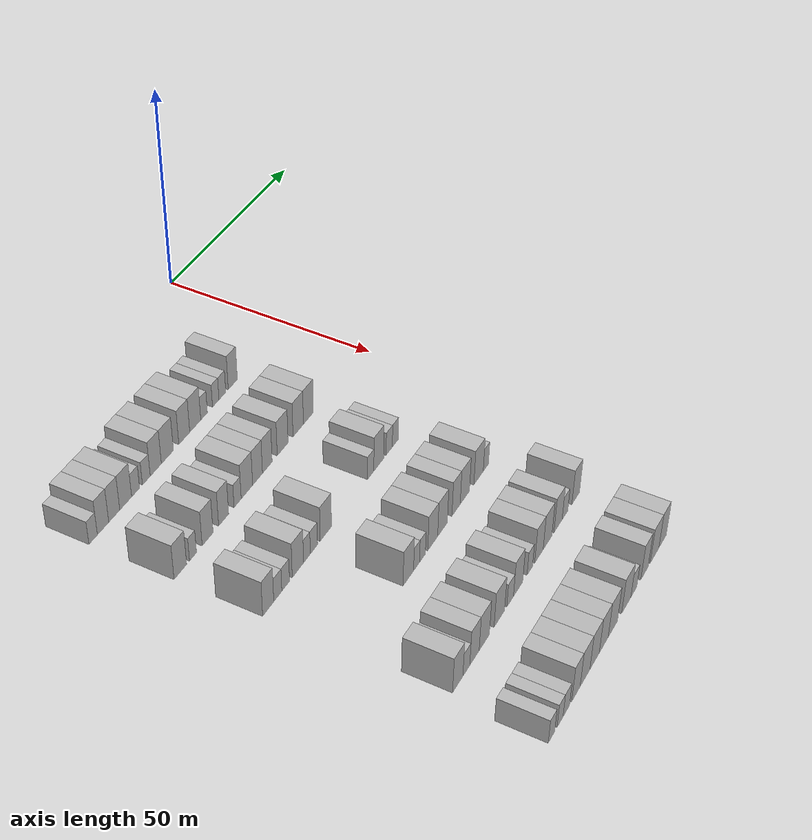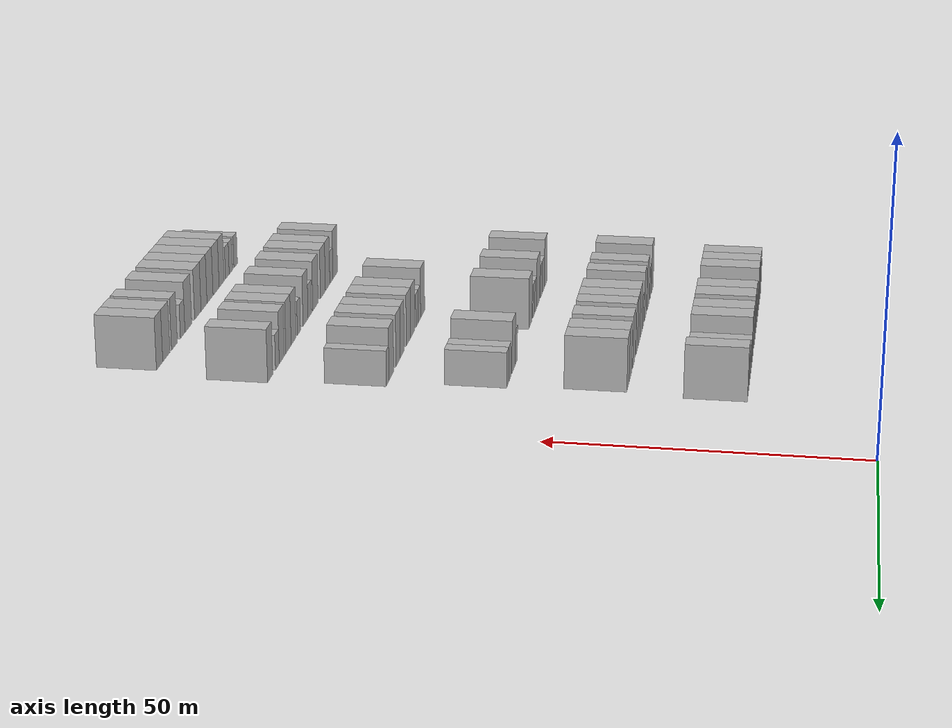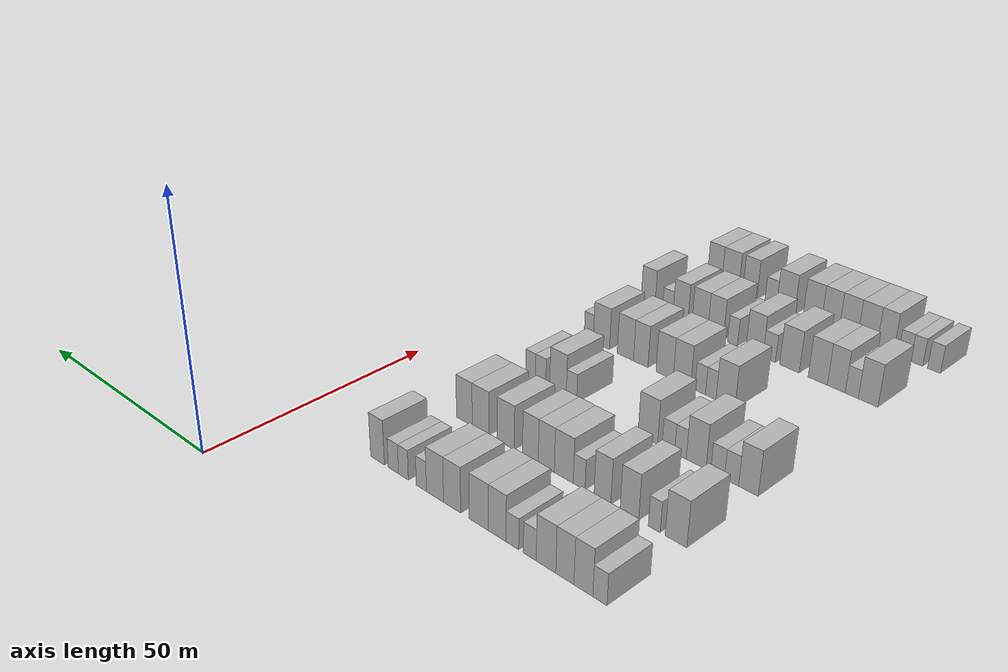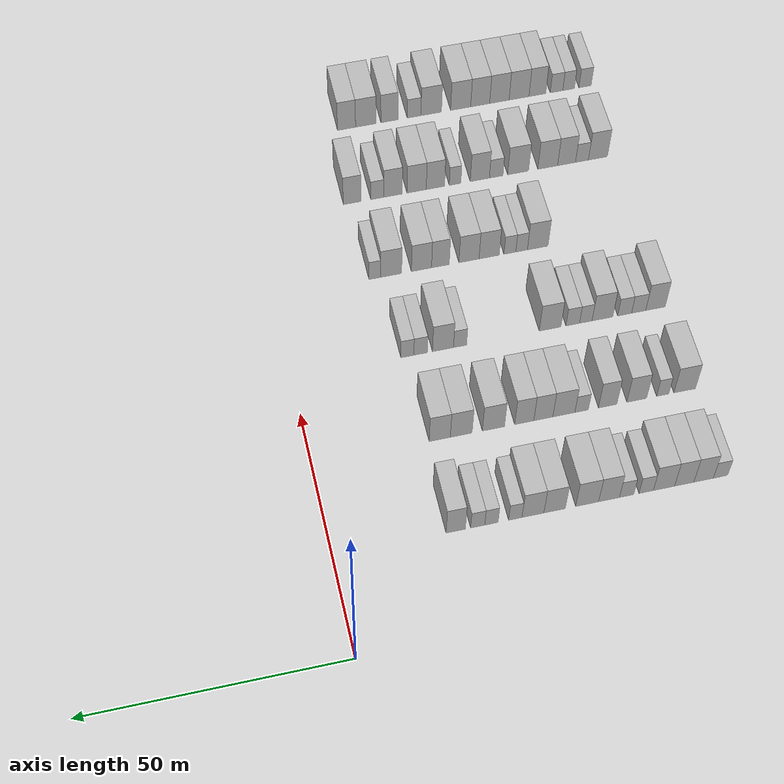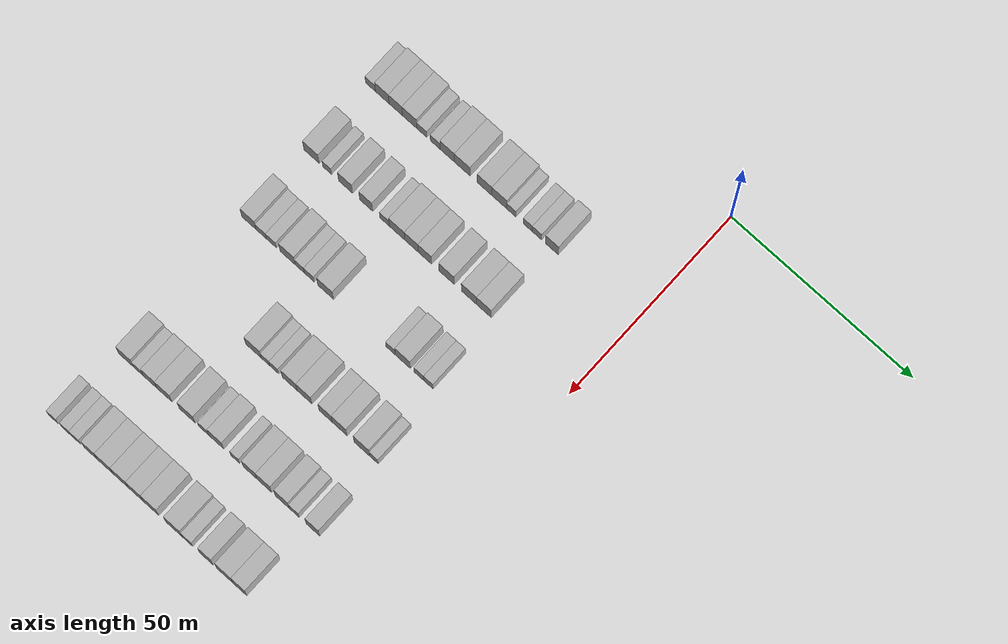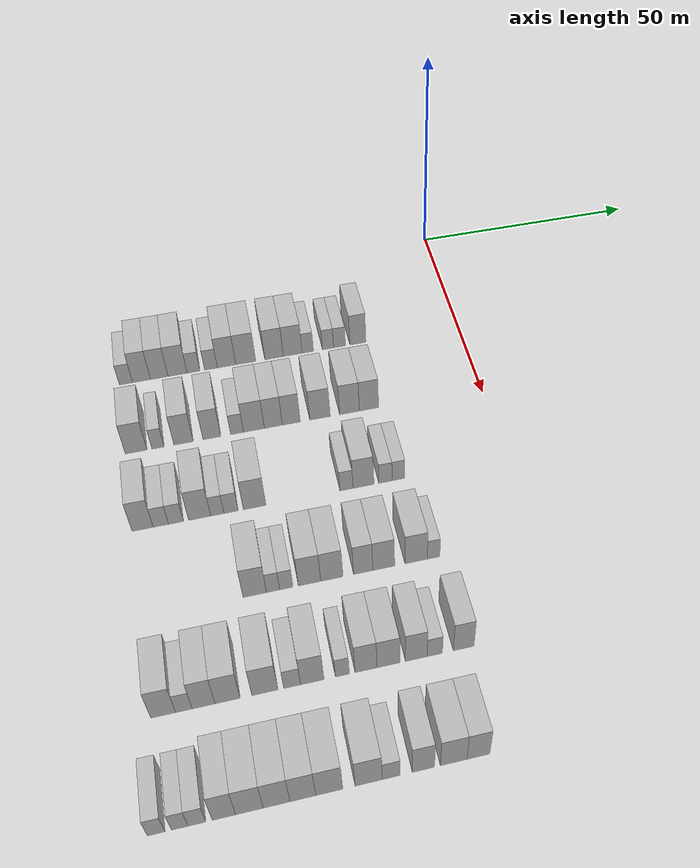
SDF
<sdf version="1.6">
 <world name="default">
  <model name="building_71">
   <static>1</static>
   <pose>25.0000 -73.5509 0 0.000000 0.000000 0.000000</pose>
   <link name="link">
    <pose>0 0 3.00 0 0 0</pose>
    <collision name="collision"><geometry><box><size>10.0000 2.7978 6.0000</size></box></geometry></collision>
    <visual name="visual">
     <cast_shadows>0</cast_shadows>
     <geometry><box><size>10.0000 2.7978 6.0000</size></box></geometry>
     <material>
      <script>
       <uri>model://HANNAS_wall/materials/scripts</uri>
       <uri>model://HANNAS_wall/materials/textures</uri>
       <name>vrc/HANNAS_wall</name>
      </script>
     </material>
    </visual>
   </link>
  </model>
  <model name="building_72">
   <static>1</static>
   <pose>25.0000 -70.2554 0 0.000000 0.000000 0.000000</pose>
   <link name="link">
    <pose>0 0 4.50 0 0 0</pose>
    <collision name="collision"><geometry><box><size>10.0000 3.7931 9.0000</size></box></geometry></collision>
    <visual name="visual">
     <cast_shadows>0</cast_shadows>
     <geometry><box><size>10.0000 3.7931 9.0000</size></box></geometry>
     <material>
      <script>
       <uri>model://HANNAS_wall/materials/scripts</uri>
       <uri>model://HANNAS_wall/materials/textures</uri>
       <name>vrc/HANNAS_wall</name>
      </script>
     </material>
    </visual>
   </link>
  </model>
  <model name="building_73">
   <static>1</static>
   <pose>25.0000 -66.4903 0 0.000000 0.000000 0.000000</pose>
   <link name="link">
    <pose>0 0 4.50 0 0 0</pose>
    <collision name="collision"><geometry><box><size>10.0000 3.7370 9.0000</size></box></geometry></collision>
    <visual name="visual">
     <cast_shadows>0</cast_shadows>
     <geometry><box><size>10.0000 3.7370 9.0000</size></box></geometry>
     <material>
      <script>
       <uri>model://HANNAS_wall/materials/scripts</uri>
       <uri>model://HANNAS_wall/materials/textures</uri>
       <name>vrc/HANNAS_wall</name>
      </script>
     </material>
    </visual>
   </link>
  </model>
  <model name="building_74">
   <static>1</static>
   <pose>25.0000 -62.5750 0 0.000000 0.000000 0.000000</pose>
   <link name="link">
    <pose>0 0 4.50 0 0 0</pose>
    <collision name="collision"><geometry><box><size>10.0000 4.0937 9.0000</size></box></geometry></collision>
    <visual name="visual">
     <cast_shadows>0</cast_shadows>
     <geometry><box><size>10.0000 4.0937 9.0000</size></box></geometry>
     <material>
      <script>
       <uri>model://HANNAS_wall/materials/scripts</uri>
       <uri>model://HANNAS_wall/materials/textures</uri>
       <name>vrc/HANNAS_wall</name>
      </script>
     </material>
    </visual>
   </link>
  </model>
  <model name="building_75">
   <static>1</static>
   <pose>25.0000 -59.1416 0 0.000000 0.000000 0.000000</pose>
   <link name="link">
    <pose>0 0 3.00 0 0 0</pose>
    <collision name="collision"><geometry><box><size>10.0000 2.7732 6.0000</size></box></geometry></collision>
    <visual name="visual">
     <cast_shadows>0</cast_shadows>
     <geometry><box><size>10.0000 2.7732 6.0000</size></box></geometry>
     <material>
      <script>
       <uri>model://HANNAS_wall/materials/scripts</uri>
       <uri>model://HANNAS_wall/materials/textures</uri>
       <name>vrc/HANNAS_wall</name>
      </script>
     </material>
    </visual>
   </link>
  </model>
  <model name="building_76">
   <static>1</static>
   <pose>25.0000 -55.3768 0 0.000000 0.000000 0.000000</pose>
   <link name="link">
    <pose>0 0 3.00 0 0 0</pose>
    <collision name="collision"><geometry><box><size>10.0000 2.7564 6.0000</size></box></geometry></collision>
    <visual name="visual">
     <cast_shadows>0</cast_shadows>
     <geometry><box><size>10.0000 2.7564 6.0000</size></box></geometry>
     <material>
      <script>
       <uri>model://HANNAS_wall/materials/scripts</uri>
       <uri>model://HANNAS_wall/materials/textures</uri>
       <name>vrc/HANNAS_wall</name>
      </script>
     </material>
    </visual>
   </link>
  </model>
  <model name="building_77">
   <static>1</static>
   <pose>25.0000 -52.0051 0 0.000000 0.000000 0.000000</pose>
   <link name="link">
    <pose>0 0 4.50 0 0 0</pose>
    <collision name="collision"><geometry><box><size>10.0000 3.9870 9.0000</size></box></geometry></collision>
    <visual name="visual">
     <cast_shadows>0</cast_shadows>
     <geometry><box><size>10.0000 3.9870 9.0000</size></box></geometry>
     <material>
      <script>
       <uri>model://HANNAS_wall/materials/scripts</uri>
       <uri>model://HANNAS_wall/materials/textures</uri>
       <name>vrc/HANNAS_wall</name>
      </script>
     </material>
    </visual>
   </link>
  </model>
  <model name="building_78">
   <static>1</static>
   <pose>25.0000 -47.8203 0 0.000000 0.000000 0.000000</pose>
   <link name="link">
    <pose>0 0 4.50 0 0 0</pose>
    <collision name="collision"><geometry><box><size>10.0000 4.3826 9.0000</size></box></geometry></collision>
    <visual name="visual">
     <cast_shadows>0</cast_shadows>
     <geometry><box><size>10.0000 4.3826 9.0000</size></box></geometry>
     <material>
      <script>
       <uri>model://HANNAS_wall/materials/scripts</uri>
       <uri>model://HANNAS_wall/materials/textures</uri>
       <name>vrc/HANNAS_wall</name>
      </script>
     </material>
    </visual>
   </link>
  </model>
  <model name="building_79">
   <static>1</static>
   <pose>25.0000 -41.5962 0 0.000000 0.000000 0.000000</pose>
   <link name="link">
    <pose>0 0 4.50 0 0 0</pose>
    <collision name="collision"><geometry><box><size>10.0000 4.0655 9.0000</size></box></geometry></collision>
    <visual name="visual">
     <cast_shadows>0</cast_shadows>
     <geometry><box><size>10.0000 4.0655 9.0000</size></box></geometry>
     <material>
      <script>
       <uri>model://HANNAS_wall/materials/scripts</uri>
       <uri>model://HANNAS_wall/materials/textures</uri>
       <name>vrc/HANNAS_wall</name>
      </script>
     </material>
    </visual>
   </link>
  </model>
  <model name="building_80">
   <static>1</static>
   <pose>25.0000 -37.4816 0 0.000000 0.000000 0.000000</pose>
   <link name="link">
    <pose>0 0 4.50 0 0 0</pose>
    <collision name="collision"><geometry><box><size>10.0000 4.1637 9.0000</size></box></geometry></collision>
    <visual name="visual">
     <cast_shadows>0</cast_shadows>
     <geometry><box><size>10.0000 4.1637 9.0000</size></box></geometry>
     <material>
      <script>
       <uri>model://HANNAS_wall/materials/scripts</uri>
       <uri>model://HANNAS_wall/materials/textures</uri>
       <name>vrc/HANNAS_wall</name>
      </script>
     </material>
    </visual>
   </link>
  </model>
  <model name="building_81">
   <static>1</static>
   <pose>25.0000 -34.1404 0 0.000000 0.000000 0.000000</pose>
   <link name="link">
    <pose>0 0 3.00 0 0 0</pose>
    <collision name="collision"><geometry><box><size>10.0000 2.5189 6.0000</size></box></geometry></collision>
    <visual name="visual">
     <cast_shadows>0</cast_shadows>
     <geometry><box><size>10.0000 2.5189 6.0000</size></box></geometry>
     <material>
      <script>
       <uri>model://HANNAS_wall/materials/scripts</uri>
       <uri>model://HANNAS_wall/materials/textures</uri>
       <name>vrc/HANNAS_wall</name>
      </script>
     </material>
    </visual>
   </link>
  </model>
  <model name="building_82">
   <static>1</static>
   <pose>25.0000 -29.6250 0 0.000000 0.000000 0.000000</pose>
   <link name="link">
    <pose>0 0 3.00 0 0 0</pose>
    <collision name="collision"><geometry><box><size>10.0000 2.5118 6.0000</size></box></geometry></collision>
    <visual name="visual">
     <cast_shadows>0</cast_shadows>
     <geometry><box><size>10.0000 2.5118 6.0000</size></box></geometry>
     <material>
      <script>
       <uri>model://HANNAS_wall/materials/scripts</uri>
       <uri>model://HANNAS_wall/materials/textures</uri>
       <name>vrc/HANNAS_wall</name>
      </script>
     </material>
    </visual>
   </link>
  </model>
  <model name="building_83">
   <static>1</static>
   <pose>25.0000 -27.0428 0 0.000000 0.000000 0.000000</pose>
   <link name="link">
    <pose>0 0 3.00 0 0 0</pose>
    <collision name="collision"><geometry><box><size>10.0000 2.6528 6.0000</size></box></geometry></collision>
    <visual name="visual">
     <cast_shadows>0</cast_shadows>
     <geometry><box><size>10.0000 2.6528 6.0000</size></box></geometry>
     <material>
      <script>
       <uri>model://HANNAS_wall/materials/scripts</uri>
       <uri>model://HANNAS_wall/materials/textures</uri>
       <name>vrc/HANNAS_wall</name>
      </script>
     </material>
    </visual>
   </link>
  </model>
  <model name="building_84">
   <static>1</static>
   <pose>25.0000 -22.9056 0 0.000000 0.000000 0.000000</pose>
   <link name="link">
    <pose>0 0 4.50 0 0 0</pose>
    <collision name="collision"><geometry><box><size>10.0000 3.6216 9.0000</size></box></geometry></collision>
    <visual name="visual">
     <cast_shadows>0</cast_shadows>
     <geometry><box><size>10.0000 3.6216 9.0000</size></box></geometry>
     <material>
      <script>
       <uri>model://HANNAS_wall/materials/scripts</uri>
       <uri>model://HANNAS_wall/materials/textures</uri>
       <name>vrc/HANNAS_wall</name>
      </script>
     </material>
    </visual>
   </link>
  </model>
  <model name="building_244">
   <static>1</static>
   <pose>44.0000 -72.6647 0 0.000000 0.000000 0.000000</pose>
   <link name="link">
    <pose>0 0 4.50 0 0 0</pose>
    <collision name="collision"><geometry><box><size>10.0000 4.3169 9.0000</size></box></geometry></collision>
    <visual name="visual">
     <cast_shadows>0</cast_shadows>
     <geometry><box><size>10.0000 4.3169 9.0000</size></box></geometry>
     <material>
      <script>
       <uri>model://HANNAS_wall/materials/scripts</uri>
       <uri>model://HANNAS_wall/materials/textures</uri>
       <name>vrc/HANNAS_wall</name>
      </script>
     </material>
    </visual>
   </link>
  </model>
  <model name="building_245">
   <static>1</static>
   <pose>44.0000 -68.2889 0 0.000000 0.000000 0.000000</pose>
   <link name="link">
    <pose>0 0 3.00 0 0 0</pose>
    <collision name="collision"><geometry><box><size>10.0000 2.4348 6.0000</size></box></geometry></collision>
    <visual name="visual">
     <cast_shadows>0</cast_shadows>
     <geometry><box><size>10.0000 2.4348 6.0000</size></box></geometry>
     <material>
      <script>
       <uri>model://HANNAS_wall/materials/scripts</uri>
       <uri>model://HANNAS_wall/materials/textures</uri>
       <name>vrc/HANNAS_wall</name>
      </script>
     </material>
    </visual>
   </link>
  </model>
  <model name="building_246">
   <static>1</static>
   <pose>44.0000 -63.1206 0 0.000000 0.000000 0.000000</pose>
   <link name="link">
    <pose>0 0 4.50 0 0 0</pose>
    <collision name="collision"><geometry><box><size>10.0000 3.9018 9.0000</size></box></geometry></collision>
    <visual name="visual">
     <cast_shadows>0</cast_shadows>
     <geometry><box><size>10.0000 3.9018 9.0000</size></box></geometry>
     <material>
      <script>
       <uri>model://HANNAS_wall/materials/scripts</uri>
       <uri>model://HANNAS_wall/materials/textures</uri>
       <name>vrc/HANNAS_wall</name>
      </script>
     </material>
    </visual>
   </link>
  </model>
  <model name="building_247">
   <static>1</static>
   <pose>44.0000 -57.3450 0 0.000000 0.000000 0.000000</pose>
   <link name="link">
    <pose>0 0 4.50 0 0 0</pose>
    <collision name="collision"><geometry><box><size>10.0000 3.6495 9.0000</size></box></geometry></collision>
    <visual name="visual">
     <cast_shadows>0</cast_shadows>
     <geometry><box><size>10.0000 3.6495 9.0000</size></box></geometry>
     <material>
      <script>
       <uri>model://HANNAS_wall/materials/scripts</uri>
       <uri>model://HANNAS_wall/materials/textures</uri>
       <name>vrc/HANNAS_wall</name>
      </script>
     </material>
    </visual>
   </link>
  </model>
  <model name="building_248">
   <static>1</static>
   <pose>44.0000 -52.1981 0 0.000000 0.000000 0.000000</pose>
   <link name="link">
    <pose>0 0 3.00 0 0 0</pose>
    <collision name="collision"><geometry><box><size>10.0000 2.6443 6.0000</size></box></geometry></collision>
    <visual name="visual">
     <cast_shadows>0</cast_shadows>
     <geometry><box><size>10.0000 2.6443 6.0000</size></box></geometry>
     <material>
      <script>
       <uri>model://HANNAS_wall/materials/scripts</uri>
       <uri>model://HANNAS_wall/materials/textures</uri>
       <name>vrc/HANNAS_wall</name>
      </script>
     </material>
    </visual>
   </link>
  </model>
  <model name="building_249">
   <static>1</static>
   <pose>44.0000 -48.7122 0 0.000000 0.000000 0.000000</pose>
   <link name="link">
    <pose>0 0 4.50 0 0 0</pose>
    <collision name="collision"><geometry><box><size>10.0000 4.3275 9.0000</size></box></geometry></collision>
    <visual name="visual">
     <cast_shadows>0</cast_shadows>
     <geometry><box><size>10.0000 4.3275 9.0000</size></box></geometry>
     <material>
      <script>
       <uri>model://HANNAS_wall/materials/scripts</uri>
       <uri>model://HANNAS_wall/materials/textures</uri>
       <name>vrc/HANNAS_wall</name>
      </script>
     </material>
    </visual>
   </link>
  </model>
  <model name="building_250">
   <static>1</static>
   <pose>44.0000 -44.6727 0 0.000000 0.000000 0.000000</pose>
   <link name="link">
    <pose>0 0 4.50 0 0 0</pose>
    <collision name="collision"><geometry><box><size>10.0000 3.7515 9.0000</size></box></geometry></collision>
    <visual name="visual">
     <cast_shadows>0</cast_shadows>
     <geometry><box><size>10.0000 3.7515 9.0000</size></box></geometry>
     <material>
      <script>
       <uri>model://HANNAS_wall/materials/scripts</uri>
       <uri>model://HANNAS_wall/materials/textures</uri>
       <name>vrc/HANNAS_wall</name>
      </script>
     </material>
    </visual>
   </link>
  </model>
  <model name="building_251">
   <static>1</static>
   <pose>44.0000 -40.9242 0 0.000000 0.000000 0.000000</pose>
   <link name="link">
    <pose>0 0 4.50 0 0 0</pose>
    <collision name="collision"><geometry><box><size>10.0000 3.7456 9.0000</size></box></geometry></collision>
    <visual name="visual">
     <cast_shadows>0</cast_shadows>
     <geometry><box><size>10.0000 3.7456 9.0000</size></box></geometry>
     <material>
      <script>
       <uri>model://HANNAS_wall/materials/scripts</uri>
       <uri>model://HANNAS_wall/materials/textures</uri>
       <name>vrc/HANNAS_wall</name>
      </script>
     </material>
    </visual>
   </link>
  </model>
  <model name="building_252">
   <static>1</static>
   <pose>44.0000 -34.9023 0 0.000000 0.000000 0.000000</pose>
   <link name="link">
    <pose>0 0 4.50 0 0 0</pose>
    <collision name="collision"><geometry><box><size>10.0000 4.2982 9.0000</size></box></geometry></collision>
    <visual name="visual">
     <cast_shadows>0</cast_shadows>
     <geometry><box><size>10.0000 4.2982 9.0000</size></box></geometry>
     <material>
      <script>
       <uri>model://HANNAS_wall/materials/scripts</uri>
       <uri>model://HANNAS_wall/materials/textures</uri>
       <name>vrc/HANNAS_wall</name>
      </script>
     </material>
    </visual>
   </link>
  </model>
  <model name="building_253">
   <static>1</static>
   <pose>44.0000 -28.6449 0 0.000000 0.000000 0.000000</pose>
   <link name="link">
    <pose>0 0 4.50 0 0 0</pose>
    <collision name="collision"><geometry><box><size>10.0000 4.2166 9.0000</size></box></geometry></collision>
    <visual name="visual">
     <cast_shadows>0</cast_shadows>
     <geometry><box><size>10.0000 4.2166 9.0000</size></box></geometry>
     <material>
      <script>
       <uri>model://HANNAS_wall/materials/scripts</uri>
       <uri>model://HANNAS_wall/materials/textures</uri>
       <name>vrc/HANNAS_wall</name>
      </script>
     </material>
    </visual>
   </link>
  </model>
  <model name="building_254">
   <static>1</static>
   <pose>44.0000 -24.4914 0 0.000000 0.000000 0.000000</pose>
   <link name="link">
    <pose>0 0 4.50 0 0 0</pose>
    <collision name="collision"><geometry><box><size>10.0000 4.0903 9.0000</size></box></geometry></collision>
    <visual name="visual">
     <cast_shadows>0</cast_shadows>
     <geometry><box><size>10.0000 4.0903 9.0000</size></box></geometry>
     <material>
      <script>
       <uri>model://HANNAS_wall/materials/scripts</uri>
       <uri>model://HANNAS_wall/materials/textures</uri>
       <name>vrc/HANNAS_wall</name>
      </script>
     </material>
    </visual>
   </link>
  </model>
  <model name="building_421">
   <static>1</static>
   <pose>63.0000 -72.7354 0 0.000000 0.000000 0.000000</pose>
   <link name="link">
    <pose>0 0 4.50 0 0 0</pose>
    <collision name="collision"><geometry><box><size>10.0000 3.9732 9.0000</size></box></geometry></collision>
    <visual name="visual">
     <cast_shadows>0</cast_shadows>
     <geometry><box><size>10.0000 3.9732 9.0000</size></box></geometry>
     <material>
      <script>
       <uri>model://HANNAS_wall/materials/scripts</uri>
       <uri>model://HANNAS_wall/materials/textures</uri>
       <name>vrc/HANNAS_wall</name>
      </script>
     </material>
    </visual>
   </link>
  </model>
  <model name="building_422">
   <static>1</static>
   <pose>63.0000 -69.2938 0 0.000000 0.000000 0.000000</pose>
   <link name="link">
    <pose>0 0 3.00 0 0 0</pose>
    <collision name="collision"><geometry><box><size>10.0000 2.9100 6.0000</size></box></geometry></collision>
    <visual name="visual">
     <cast_shadows>0</cast_shadows>
     <geometry><box><size>10.0000 2.9100 6.0000</size></box></geometry>
     <material>
      <script>
       <uri>model://HANNAS_wall/materials/scripts</uri>
       <uri>model://HANNAS_wall/materials/textures</uri>
       <name>vrc/HANNAS_wall</name>
      </script>
     </material>
    </visual>
   </link>
  </model>
  <model name="building_423">
   <static>1</static>
   <pose>63.0000 -66.4165 0 0.000000 0.000000 0.000000</pose>
   <link name="link">
    <pose>0 0 3.00 0 0 0</pose>
    <collision name="collision"><geometry><box><size>10.0000 2.8447 6.0000</size></box></geometry></collision>
    <visual name="visual">
     <cast_shadows>0</cast_shadows>
     <geometry><box><size>10.0000 2.8447 6.0000</size></box></geometry>
     <material>
      <script>
       <uri>model://HANNAS_wall/materials/scripts</uri>
       <uri>model://HANNAS_wall/materials/textures</uri>
       <name>vrc/HANNAS_wall</name>
      </script>
     </material>
    </visual>
   </link>
  </model>
  <model name="building_424">
   <static>1</static>
   <pose>63.0000 -61.8801 0 0.000000 0.000000 0.000000</pose>
   <link name="link">
    <pose>0 0 4.50 0 0 0</pose>
    <collision name="collision"><geometry><box><size>10.0000 4.2282 9.0000</size></box></geometry></collision>
    <visual name="visual">
     <cast_shadows>0</cast_shadows>
     <geometry><box><size>10.0000 4.2282 9.0000</size></box></geometry>
     <material>
      <script>
       <uri>model://HANNAS_wall/materials/scripts</uri>
       <uri>model://HANNAS_wall/materials/textures</uri>
       <name>vrc/HANNAS_wall</name>
      </script>
     </material>
    </visual>
   </link>
  </model>
  <model name="building_425">
   <static>1</static>
   <pose>63.0000 -58.4934 0 0.000000 0.000000 0.000000</pose>
   <link name="link">
    <pose>0 0 3.00 0 0 0</pose>
    <collision name="collision"><geometry><box><size>10.0000 2.5452 6.0000</size></box></geometry></collision>
    <visual name="visual">
     <cast_shadows>0</cast_shadows>
     <geometry><box><size>10.0000 2.5452 6.0000</size></box></geometry>
     <material>
      <script>
       <uri>model://HANNAS_wall/materials/scripts</uri>
       <uri>model://HANNAS_wall/materials/textures</uri>
       <name>vrc/HANNAS_wall</name>
      </script>
     </material>
    </visual>
   </link>
  </model>
  <model name="building_426">
   <static>1</static>
   <pose>63.0000 -55.8339 0 0.000000 0.000000 0.000000</pose>
   <link name="link">
    <pose>0 0 3.00 0 0 0</pose>
    <collision name="collision"><geometry><box><size>10.0000 2.7737 6.0000</size></box></geometry></collision>
    <visual name="visual">
     <cast_shadows>0</cast_shadows>
     <geometry><box><size>10.0000 2.7737 6.0000</size></box></geometry>
     <material>
      <script>
       <uri>model://HANNAS_wall/materials/scripts</uri>
       <uri>model://HANNAS_wall/materials/textures</uri>
       <name>vrc/HANNAS_wall</name>
      </script>
     </material>
    </visual>
   </link>
  </model>
  <model name="building_427">
   <static>1</static>
   <pose>63.0000 -51.2446 0 0.000000 0.000000 0.000000</pose>
   <link name="link">
    <pose>0 0 4.50 0 0 0</pose>
    <collision name="collision"><geometry><box><size>10.0000 4.4048 9.0000</size></box></geometry></collision>
    <visual name="visual">
     <cast_shadows>0</cast_shadows>
     <geometry><box><size>10.0000 4.4048 9.0000</size></box></geometry>
     <material>
      <script>
       <uri>model://HANNAS_wall/materials/scripts</uri>
       <uri>model://HANNAS_wall/materials/textures</uri>
       <name>vrc/HANNAS_wall</name>
      </script>
     </material>
    </visual>
   </link>
  </model>
  <model name="building_428">
   <static>1</static>
   <pose>63.0000 -33.1157 0 0.000000 0.000000 0.000000</pose>
   <link name="link">
    <pose>0 0 3.00 0 0 0</pose>
    <collision name="collision"><geometry><box><size>10.0000 2.6177 6.0000</size></box></geometry></collision>
    <visual name="visual">
     <cast_shadows>0</cast_shadows>
     <geometry><box><size>10.0000 2.6177 6.0000</size></box></geometry>
     <material>
      <script>
       <uri>model://HANNAS_wall/materials/scripts</uri>
       <uri>model://HANNAS_wall/materials/textures</uri>
       <name>vrc/HANNAS_wall</name>
      </script>
     </material>
    </visual>
   </link>
  </model>
  <model name="building_429">
   <static>1</static>
   <pose>63.0000 -29.7063 0 0.000000 0.000000 0.000000</pose>
   <link name="link">
    <pose>0 0 4.50 0 0 0</pose>
    <collision name="collision"><geometry><box><size>10.0000 4.2011 9.0000</size></box></geometry></collision>
    <visual name="visual">
     <cast_shadows>0</cast_shadows>
     <geometry><box><size>10.0000 4.2011 9.0000</size></box></geometry>
     <material>
      <script>
       <uri>model://HANNAS_wall/materials/scripts</uri>
       <uri>model://HANNAS_wall/materials/textures</uri>
       <name>vrc/HANNAS_wall</name>
      </script>
     </material>
    </visual>
   </link>
  </model>
  <model name="building_430">
   <static>1</static>
   <pose>63.0000 -25.2605 0 0.000000 0.000000 0.000000</pose>
   <link name="link">
    <pose>0 0 3.00 0 0 0</pose>
    <collision name="collision"><geometry><box><size>10.0000 2.6906 6.0000</size></box></geometry></collision>
    <visual name="visual">
     <cast_shadows>0</cast_shadows>
     <geometry><box><size>10.0000 2.6906 6.0000</size></box></geometry>
     <material>
      <script>
       <uri>model://HANNAS_wall/materials/scripts</uri>
       <uri>model://HANNAS_wall/materials/textures</uri>
       <name>vrc/HANNAS_wall</name>
      </script>
     </material>
    </visual>
   </link>
  </model>
  <model name="building_431">
   <static>1</static>
   <pose>63.0000 -22.6201 0 0.000000 0.000000 0.000000</pose>
   <link name="link">
    <pose>0 0 3.00 0 0 0</pose>
    <collision name="collision"><geometry><box><size>10.0000 2.5902 6.0000</size></box></geometry></collision>
    <visual name="visual">
     <cast_shadows>0</cast_shadows>
     <geometry><box><size>10.0000 2.5902 6.0000</size></box></geometry>
     <material>
      <script>
       <uri>model://HANNAS_wall/materials/scripts</uri>
       <uri>model://HANNAS_wall/materials/textures</uri>
       <name>vrc/HANNAS_wall</name>
      </script>
     </material>
    </visual>
   </link>
  </model>
  <model name="building_598">
   <static>1</static>
   <pose>82.0000 -53.9048 0 0.000000 0.000000 0.000000</pose>
   <link name="link">
    <pose>0 0 4.50 0 0 0</pose>
    <collision name="collision"><geometry><box><size>10.0000 4.2778 9.0000</size></box></geometry></collision>
    <visual name="visual">
     <cast_shadows>0</cast_shadows>
     <geometry><box><size>10.0000 4.2778 9.0000</size></box></geometry>
     <material>
      <script>
       <uri>model://HANNAS_wall/materials/scripts</uri>
       <uri>model://HANNAS_wall/materials/textures</uri>
       <name>vrc/HANNAS_wall</name>
      </script>
     </material>
    </visual>
   </link>
  </model>
  <model name="building_599">
   <static>1</static>
   <pose>82.0000 -50.5617 0 0.000000 0.000000 0.000000</pose>
   <link name="link">
    <pose>0 0 3.00 0 0 0</pose>
    <collision name="collision"><geometry><box><size>10.0000 2.4084 6.0000</size></box></geometry></collision>
    <visual name="visual">
     <cast_shadows>0</cast_shadows>
     <geometry><box><size>10.0000 2.4084 6.0000</size></box></geometry>
     <material>
      <script>
       <uri>model://HANNAS_wall/materials/scripts</uri>
       <uri>model://HANNAS_wall/materials/textures</uri>
       <name>vrc/HANNAS_wall</name>
      </script>
     </material>
    </visual>
   </link>
  </model>
  <model name="building_600">
   <static>1</static>
   <pose>82.0000 -48.1253 0 0.000000 0.000000 0.000000</pose>
   <link name="link">
    <pose>0 0 3.00 0 0 0</pose>
    <collision name="collision"><geometry><box><size>10.0000 2.4643 6.0000</size></box></geometry></collision>
    <visual name="visual">
     <cast_shadows>0</cast_shadows>
     <geometry><box><size>10.0000 2.4643 6.0000</size></box></geometry>
     <material>
      <script>
       <uri>model://HANNAS_wall/materials/scripts</uri>
       <uri>model://HANNAS_wall/materials/textures</uri>
       <name>vrc/HANNAS_wall</name>
      </script>
     </material>
    </visual>
   </link>
  </model>
  <model name="building_601">
   <static>1</static>
   <pose>82.0000 -43.8114 0 0.000000 0.000000 0.000000</pose>
   <link name="link">
    <pose>0 0 4.50 0 0 0</pose>
    <collision name="collision"><geometry><box><size>10.0000 4.1635 9.0000</size></box></geometry></collision>
    <visual name="visual">
     <cast_shadows>0</cast_shadows>
     <geometry><box><size>10.0000 4.1635 9.0000</size></box></geometry>
     <material>
      <script>
       <uri>model://HANNAS_wall/materials/scripts</uri>
       <uri>model://HANNAS_wall/materials/textures</uri>
       <name>vrc/HANNAS_wall</name>
      </script>
     </material>
    </visual>
   </link>
  </model>
  <model name="building_602">
   <static>1</static>
   <pose>82.0000 -39.6571 0 0.000000 0.000000 0.000000</pose>
   <link name="link">
    <pose>0 0 4.50 0 0 0</pose>
    <collision name="collision"><geometry><box><size>10.0000 4.1452 9.0000</size></box></geometry></collision>
    <visual name="visual">
     <cast_shadows>0</cast_shadows>
     <geometry><box><size>10.0000 4.1452 9.0000</size></box></geometry>
     <material>
      <script>
       <uri>model://HANNAS_wall/materials/scripts</uri>
       <uri>model://HANNAS_wall/materials/textures</uri>
       <name>vrc/HANNAS_wall</name>
      </script>
     </material>
    </visual>
   </link>
  </model>
  <model name="building_603">
   <static>1</static>
   <pose>82.0000 -33.7718 0 0.000000 0.000000 0.000000</pose>
   <link name="link">
    <pose>0 0 4.50 0 0 0</pose>
    <collision name="collision"><geometry><box><size>10.0000 3.6253 9.0000</size></box></geometry></collision>
    <visual name="visual">
     <cast_shadows>0</cast_shadows>
     <geometry><box><size>10.0000 3.6253 9.0000</size></box></geometry>
     <material>
      <script>
       <uri>model://HANNAS_wall/materials/scripts</uri>
       <uri>model://HANNAS_wall/materials/textures</uri>
       <name>vrc/HANNAS_wall</name>
      </script>
     </material>
    </visual>
   </link>
  </model>
  <model name="building_604">
   <static>1</static>
   <pose>82.0000 -29.8982 0 0.000000 0.000000 0.000000</pose>
   <link name="link">
    <pose>0 0 4.50 0 0 0</pose>
    <collision name="collision"><geometry><box><size>10.0000 4.1220 9.0000</size></box></geometry></collision>
    <visual name="visual">
     <cast_shadows>0</cast_shadows>
     <geometry><box><size>10.0000 4.1220 9.0000</size></box></geometry>
     <material>
      <script>
       <uri>model://HANNAS_wall/materials/scripts</uri>
       <uri>model://HANNAS_wall/materials/textures</uri>
       <name>vrc/HANNAS_wall</name>
      </script>
     </material>
    </visual>
   </link>
  </model>
  <model name="building_605">
   <static>1</static>
   <pose>82.0000 -23.7036 0 0.000000 0.000000 0.000000</pose>
   <link name="link">
    <pose>0 0 4.50 0 0 0</pose>
    <collision name="collision"><geometry><box><size>10.0000 4.2672 9.0000</size></box></geometry></collision>
    <visual name="visual">
     <cast_shadows>0</cast_shadows>
     <geometry><box><size>10.0000 4.2672 9.0000</size></box></geometry>
     <material>
      <script>
       <uri>model://HANNAS_wall/materials/scripts</uri>
       <uri>model://HANNAS_wall/materials/textures</uri>
       <name>vrc/HANNAS_wall</name>
      </script>
     </material>
    </visual>
   </link>
  </model>
  <model name="building_606">
   <static>1</static>
   <pose>82.0000 -20.3696 0 0.000000 0.000000 0.000000</pose>
   <link name="link">
    <pose>0 0 3.00 0 0 0</pose>
    <collision name="collision"><geometry><box><size>10.0000 2.4009 6.0000</size></box></geometry></collision>
    <visual name="visual">
     <cast_shadows>0</cast_shadows>
     <geometry><box><size>10.0000 2.4009 6.0000</size></box></geometry>
     <material>
      <script>
       <uri>model://HANNAS_wall/materials/scripts</uri>
       <uri>model://HANNAS_wall/materials/textures</uri>
       <name>vrc/HANNAS_wall</name>
      </script>
     </material>
    </visual>
   </link>
  </model>
  <model name="building_769">
   <static>1</static>
   <pose>101.0000 -72.0307 0 0.000000 0.000000 0.000000</pose>
   <link name="link">
    <pose>0 0 4.50 0 0 0</pose>
    <collision name="collision"><geometry><box><size>10.0000 4.1129 9.0000</size></box></geometry></collision>
    <visual name="visual">
     <cast_shadows>0</cast_shadows>
     <geometry><box><size>10.0000 4.1129 9.0000</size></box></geometry>
     <material>
      <script>
       <uri>model://HANNAS_wall/materials/scripts</uri>
       <uri>model://HANNAS_wall/materials/textures</uri>
       <name>vrc/HANNAS_wall</name>
      </script>
     </material>
    </visual>
   </link>
  </model>
  <model name="building_770">
   <static>1</static>
   <pose>101.0000 -68.5841 0 0.000000 0.000000 0.000000</pose>
   <link name="link">
    <pose>0 0 3.00 0 0 0</pose>
    <collision name="collision"><geometry><box><size>10.0000 2.7802 6.0000</size></box></geometry></collision>
    <visual name="visual">
     <cast_shadows>0</cast_shadows>
     <geometry><box><size>10.0000 2.7802 6.0000</size></box></geometry>
     <material>
      <script>
       <uri>model://HANNAS_wall/materials/scripts</uri>
       <uri>model://HANNAS_wall/materials/textures</uri>
       <name>vrc/HANNAS_wall</name>
      </script>
     </material>
    </visual>
   </link>
  </model>
  <model name="building_771">
   <static>1</static>
   <pose>101.0000 -65.2710 0 0.000000 0.000000 0.000000</pose>
   <link name="link">
    <pose>0 0 4.50 0 0 0</pose>
    <collision name="collision"><geometry><box><size>10.0000 3.8460 9.0000</size></box></geometry></collision>
    <visual name="visual">
     <cast_shadows>0</cast_shadows>
     <geometry><box><size>10.0000 3.8460 9.0000</size></box></geometry>
     <material>
      <script>
       <uri>model://HANNAS_wall/materials/scripts</uri>
       <uri>model://HANNAS_wall/materials/textures</uri>
       <name>vrc/HANNAS_wall</name>
      </script>
     </material>
    </visual>
   </link>
  </model>
  <model name="building_772">
   <static>1</static>
   <pose>101.0000 -61.2235 0 0.000000 0.000000 0.000000</pose>
   <link name="link">
    <pose>0 0 4.50 0 0 0</pose>
    <collision name="collision"><geometry><box><size>10.0000 4.2491 9.0000</size></box></geometry></collision>
    <visual name="visual">
     <cast_shadows>0</cast_shadows>
     <geometry><box><size>10.0000 4.2491 9.0000</size></box></geometry>
     <material>
      <script>
       <uri>model://HANNAS_wall/materials/scripts</uri>
       <uri>model://HANNAS_wall/materials/textures</uri>
       <name>vrc/HANNAS_wall</name>
      </script>
     </material>
    </visual>
   </link>
  </model>
  <model name="building_773">
   <static>1</static>
   <pose>101.0000 -54.8676 0 0.000000 0.000000 0.000000</pose>
   <link name="link">
    <pose>0 0 4.50 0 0 0</pose>
    <collision name="collision"><geometry><box><size>10.0000 4.4628 9.0000</size></box></geometry></collision>
    <visual name="visual">
     <cast_shadows>0</cast_shadows>
     <geometry><box><size>10.0000 4.4628 9.0000</size></box></geometry>
     <material>
      <script>
       <uri>model://HANNAS_wall/materials/scripts</uri>
       <uri>model://HANNAS_wall/materials/textures</uri>
       <name>vrc/HANNAS_wall</name>
      </script>
     </material>
    </visual>
   </link>
  </model>
  <model name="building_774">
   <static>1</static>
   <pose>101.0000 -50.1915 0 0.000000 0.000000 0.000000</pose>
   <link name="link">
    <pose>0 0 3.00 0 0 0</pose>
    <collision name="collision"><geometry><box><size>10.0000 2.8893 6.0000</size></box></geometry></collision>
    <visual name="visual">
     <cast_shadows>0</cast_shadows>
     <geometry><box><size>10.0000 2.8893 6.0000</size></box></geometry>
     <material>
      <script>
       <uri>model://HANNAS_wall/materials/scripts</uri>
       <uri>model://HANNAS_wall/materials/textures</uri>
       <name>vrc/HANNAS_wall</name>
      </script>
     </material>
    </visual>
   </link>
  </model>
  <model name="building_775">
   <static>1</static>
   <pose>101.0000 -46.7112 0 0.000000 0.000000 0.000000</pose>
   <link name="link">
    <pose>0 0 4.50 0 0 0</pose>
    <collision name="collision"><geometry><box><size>10.0000 4.0713 9.0000</size></box></geometry></collision>
    <visual name="visual">
     <cast_shadows>0</cast_shadows>
     <geometry><box><size>10.0000 4.0713 9.0000</size></box></geometry>
     <material>
      <script>
       <uri>model://HANNAS_wall/materials/scripts</uri>
       <uri>model://HANNAS_wall/materials/textures</uri>
       <name>vrc/HANNAS_wall</name>
      </script>
     </material>
    </visual>
   </link>
  </model>
  <model name="building_776">
   <static>1</static>
   <pose>101.0000 -41.4553 0 0.000000 0.000000 0.000000</pose>
   <link name="link">
    <pose>0 0 3.00 0 0 0</pose>
    <collision name="collision"><geometry><box><size>10.0000 2.4405 6.0000</size></box></geometry></collision>
    <visual name="visual">
     <cast_shadows>0</cast_shadows>
     <geometry><box><size>10.0000 2.4405 6.0000</size></box></geometry>
     <material>
      <script>
       <uri>model://HANNAS_wall/materials/scripts</uri>
       <uri>model://HANNAS_wall/materials/textures</uri>
       <name>vrc/HANNAS_wall</name>
      </script>
     </material>
    </visual>
   </link>
  </model>
  <model name="building_777">
   <static>1</static>
   <pose>101.0000 -37.3005 0 0.000000 0.000000 0.000000</pose>
   <link name="link">
    <pose>0 0 4.50 0 0 0</pose>
    <collision name="collision"><geometry><box><size>10.0000 3.8692 9.0000</size></box></geometry></collision>
    <visual name="visual">
     <cast_shadows>0</cast_shadows>
     <geometry><box><size>10.0000 3.8692 9.0000</size></box></geometry>
     <material>
      <script>
       <uri>model://HANNAS_wall/materials/scripts</uri>
       <uri>model://HANNAS_wall/materials/textures</uri>
       <name>vrc/HANNAS_wall</name>
      </script>
     </material>
    </visual>
   </link>
  </model>
  <model name="building_778">
   <static>1</static>
   <pose>101.0000 -33.3361 0 0.000000 0.000000 0.000000</pose>
   <link name="link">
    <pose>0 0 4.50 0 0 0</pose>
    <collision name="collision"><geometry><box><size>10.0000 4.0596 9.0000</size></box></geometry></collision>
    <visual name="visual">
     <cast_shadows>0</cast_shadows>
     <geometry><box><size>10.0000 4.0596 9.0000</size></box></geometry>
     <material>
      <script>
       <uri>model://HANNAS_wall/materials/scripts</uri>
       <uri>model://HANNAS_wall/materials/textures</uri>
       <name>vrc/HANNAS_wall</name>
      </script>
     </material>
    </visual>
   </link>
  </model>
  <model name="building_779">
   <static>1</static>
   <pose>101.0000 -28.3702 0 0.000000 0.000000 0.000000</pose>
   <link name="link">
    <pose>0 0 4.50 0 0 0</pose>
    <collision name="collision"><geometry><box><size>10.0000 3.8721 9.0000</size></box></geometry></collision>
    <visual name="visual">
     <cast_shadows>0</cast_shadows>
     <geometry><box><size>10.0000 3.8721 9.0000</size></box></geometry>
     <material>
      <script>
       <uri>model://HANNAS_wall/materials/scripts</uri>
       <uri>model://HANNAS_wall/materials/textures</uri>
       <name>vrc/HANNAS_wall</name>
      </script>
     </material>
    </visual>
   </link>
  </model>
  <model name="building_780">
   <static>1</static>
   <pose>101.0000 -25.0652 0 0.000000 0.000000 0.000000</pose>
   <link name="link">
    <pose>0 0 3.00 0 0 0</pose>
    <collision name="collision"><geometry><box><size>10.0000 2.7380 6.0000</size></box></geometry></collision>
    <visual name="visual">
     <cast_shadows>0</cast_shadows>
     <geometry><box><size>10.0000 2.7380 6.0000</size></box></geometry>
     <material>
      <script>
       <uri>model://HANNAS_wall/materials/scripts</uri>
       <uri>model://HANNAS_wall/materials/textures</uri>
       <name>vrc/HANNAS_wall</name>
      </script>
     </material>
    </visual>
   </link>
  </model>
  <model name="building_781">
   <static>1</static>
   <pose>101.0000 -19.8334 0 0.000000 0.000000 0.000000</pose>
   <link name="link">
    <pose>0 0 4.50 0 0 0</pose>
    <collision name="collision"><geometry><box><size>10.0000 3.7255 9.0000</size></box></geometry></collision>
    <visual name="visual">
     <cast_shadows>0</cast_shadows>
     <geometry><box><size>10.0000 3.7255 9.0000</size></box></geometry>
     <material>
      <script>
       <uri>model://HANNAS_wall/materials/scripts</uri>
       <uri>model://HANNAS_wall/materials/textures</uri>
       <name>vrc/HANNAS_wall</name>
      </script>
     </material>
    </visual>
   </link>
  </model>
  <model name="building_951">
   <static>1</static>
   <pose>120.0000 -74.7077 0 0.000000 0.000000 0.000000</pose>
   <link name="link">
    <pose>0 0 3.00 0 0 0</pose>
    <collision name="collision"><geometry><box><size>10.0000 2.7169 6.0000</size></box></geometry></collision>
    <visual name="visual">
     <cast_shadows>0</cast_shadows>
     <geometry><box><size>10.0000 2.7169 6.0000</size></box></geometry>
     <material>
      <script>
       <uri>model://HANNAS_wall/materials/scripts</uri>
       <uri>model://HANNAS_wall/materials/textures</uri>
       <name>vrc/HANNAS_wall</name>
      </script>
     </material>
    </visual>
   </link>
  </model>
  <model name="building_952">
   <static>1</static>
   <pose>120.0000 -71.0682 0 0.000000 0.000000 0.000000</pose>
   <link name="link">
    <pose>0 0 3.00 0 0 0</pose>
    <collision name="collision"><geometry><box><size>10.0000 2.5621 6.0000</size></box></geometry></collision>
    <visual name="visual">
     <cast_shadows>0</cast_shadows>
     <geometry><box><size>10.0000 2.5621 6.0000</size></box></geometry>
     <material>
      <script>
       <uri>model://HANNAS_wall/materials/scripts</uri>
       <uri>model://HANNAS_wall/materials/textures</uri>
       <name>vrc/HANNAS_wall</name>
      </script>
     </material>
    </visual>
   </link>
  </model>
  <model name="building_953">
   <static>1</static>
   <pose>120.0000 -68.3993 0 0.000000 0.000000 0.000000</pose>
   <link name="link">
    <pose>0 0 3.00 0 0 0</pose>
    <collision name="collision"><geometry><box><size>10.0000 2.7758 6.0000</size></box></geometry></collision>
    <visual name="visual">
     <cast_shadows>0</cast_shadows>
     <geometry><box><size>10.0000 2.7758 6.0000</size></box></geometry>
     <material>
      <script>
       <uri>model://HANNAS_wall/materials/scripts</uri>
       <uri>model://HANNAS_wall/materials/textures</uri>
       <name>vrc/HANNAS_wall</name>
      </script>
     </material>
    </visual>
   </link>
  </model>
  <model name="building_954">
   <static>1</static>
   <pose>120.0000 -64.1674 0 0.000000 0.000000 0.000000</pose>
   <link name="link">
    <pose>0 0 4.50 0 0 0</pose>
    <collision name="collision"><geometry><box><size>10.0000 3.6880 9.0000</size></box></geometry></collision>
    <visual name="visual">
     <cast_shadows>0</cast_shadows>
     <geometry><box><size>10.0000 3.6880 9.0000</size></box></geometry>
     <material>
      <script>
       <uri>model://HANNAS_wall/materials/scripts</uri>
       <uri>model://HANNAS_wall/materials/textures</uri>
       <name>vrc/HANNAS_wall</name>
      </script>
     </material>
    </visual>
   </link>
  </model>
  <model name="building_955">
   <static>1</static>
   <pose>120.0000 -60.1416 0 0.000000 0.000000 0.000000</pose>
   <link name="link">
    <pose>0 0 4.50 0 0 0</pose>
    <collision name="collision"><geometry><box><size>10.0000 4.3636 9.0000</size></box></geometry></collision>
    <visual name="visual">
     <cast_shadows>0</cast_shadows>
     <geometry><box><size>10.0000 4.3636 9.0000</size></box></geometry>
     <material>
      <script>
       <uri>model://HANNAS_wall/materials/scripts</uri>
       <uri>model://HANNAS_wall/materials/textures</uri>
       <name>vrc/HANNAS_wall</name>
      </script>
     </material>
    </visual>
   </link>
  </model>
  <model name="building_956">
   <static>1</static>
   <pose>120.0000 -55.8236 0 0.000000 0.000000 0.000000</pose>
   <link name="link">
    <pose>0 0 4.50 0 0 0</pose>
    <collision name="collision"><geometry><box><size>10.0000 4.2723 9.0000</size></box></geometry></collision>
    <visual name="visual">
     <cast_shadows>0</cast_shadows>
     <geometry><box><size>10.0000 4.2723 9.0000</size></box></geometry>
     <material>
      <script>
       <uri>model://HANNAS_wall/materials/scripts</uri>
       <uri>model://HANNAS_wall/materials/textures</uri>
       <name>vrc/HANNAS_wall</name>
      </script>
     </material>
    </visual>
   </link>
  </model>
  <model name="building_957">
   <static>1</static>
   <pose>120.0000 -51.6133 0 0.000000 0.000000 0.000000</pose>
   <link name="link">
    <pose>0 0 4.50 0 0 0</pose>
    <collision name="collision"><geometry><box><size>10.0000 4.1485 9.0000</size></box></geometry></collision>
    <visual name="visual">
     <cast_shadows>0</cast_shadows>
     <geometry><box><size>10.0000 4.1485 9.0000</size></box></geometry>
     <material>
      <script>
       <uri>model://HANNAS_wall/materials/scripts</uri>
       <uri>model://HANNAS_wall/materials/textures</uri>
       <name>vrc/HANNAS_wall</name>
      </script>
     </material>
    </visual>
   </link>
  </model>
  <model name="building_958">
   <static>1</static>
   <pose>120.0000 -47.3493 0 0.000000 0.000000 0.000000</pose>
   <link name="link">
    <pose>0 0 4.50 0 0 0</pose>
    <collision name="collision"><geometry><box><size>10.0000 4.3795 9.0000</size></box></geometry></collision>
    <visual name="visual">
     <cast_shadows>0</cast_shadows>
     <geometry><box><size>10.0000 4.3795 9.0000</size></box></geometry>
     <material>
      <script>
       <uri>model://HANNAS_wall/materials/scripts</uri>
       <uri>model://HANNAS_wall/materials/textures</uri>
       <name>vrc/HANNAS_wall</name>
      </script>
     </material>
    </visual>
   </link>
  </model>
  <model name="building_959">
   <static>1</static>
   <pose>120.0000 -40.9309 0 0.000000 0.000000 0.000000</pose>
   <link name="link">
    <pose>0 0 4.50 0 0 0</pose>
    <collision name="collision"><geometry><box><size>10.0000 4.4572 9.0000</size></box></geometry></collision>
    <visual name="visual">
     <cast_shadows>0</cast_shadows>
     <geometry><box><size>10.0000 4.4572 9.0000</size></box></geometry>
     <material>
      <script>
       <uri>model://HANNAS_wall/materials/scripts</uri>
       <uri>model://HANNAS_wall/materials/textures</uri>
       <name>vrc/HANNAS_wall</name>
      </script>
     </material>
    </visual>
   </link>
  </model>
  <model name="building_960">
   <static>1</static>
   <pose>120.0000 -37.2172 0 0.000000 0.000000 0.000000</pose>
   <link name="link">
    <pose>0 0 3.00 0 0 0</pose>
    <collision name="collision"><geometry><box><size>10.0000 2.9703 6.0000</size></box></geometry></collision>
    <visual name="visual">
     <cast_shadows>0</cast_shadows>
     <geometry><box><size>10.0000 2.9703 6.0000</size></box></geometry>
     <material>
      <script>
       <uri>model://HANNAS_wall/materials/scripts</uri>
       <uri>model://HANNAS_wall/materials/textures</uri>
       <name>vrc/HANNAS_wall</name>
      </script>
     </material>
    </visual>
   </link>
  </model>
  <model name="building_961">
   <static>1</static>
   <pose>120.0000 -31.8897 0 0.000000 0.000000 0.000000</pose>
   <link name="link">
    <pose>0 0 4.50 0 0 0</pose>
    <collision name="collision"><geometry><box><size>10.0000 3.6845 9.0000</size></box></geometry></collision>
    <visual name="visual">
     <cast_shadows>0</cast_shadows>
     <geometry><box><size>10.0000 3.6845 9.0000</size></box></geometry>
     <material>
      <script>
       <uri>model://HANNAS_wall/materials/scripts</uri>
       <uri>model://HANNAS_wall/materials/textures</uri>
       <name>vrc/HANNAS_wall</name>
      </script>
     </material>
    </visual>
   </link>
  </model>
  <model name="building_962">
   <static>1</static>
   <pose>120.0000 -26.8146 0 0.000000 0.000000 0.000000</pose>
   <link name="link">
    <pose>0 0 4.50 0 0 0</pose>
    <collision name="collision"><geometry><box><size>10.0000 4.4657 9.0000</size></box></geometry></collision>
    <visual name="visual">
     <cast_shadows>0</cast_shadows>
     <geometry><box><size>10.0000 4.4657 9.0000</size></box></geometry>
     <material>
      <script>
       <uri>model://HANNAS_wall/materials/scripts</uri>
       <uri>model://HANNAS_wall/materials/textures</uri>
       <name>vrc/HANNAS_wall</name>
      </script>
     </material>
    </visual>
   </link>
  </model>
  <model name="building_963">
   <static>1</static>
   <pose>120.0000 -22.6475 0 0.000000 0.000000 0.000000</pose>
   <link name="link">
    <pose>0 0 4.50 0 0 0</pose>
    <collision name="collision"><geometry><box><size>10.0000 3.8685 9.0000</size></box></geometry></collision>
    <visual name="visual">
     <cast_shadows>0</cast_shadows>
     <geometry><box><size>10.0000 3.8685 9.0000</size></box></geometry>
     <material>
      <script>
       <uri>model://HANNAS_wall/materials/scripts</uri>
       <uri>model://HANNAS_wall/materials/textures</uri>
       <name>vrc/HANNAS_wall</name>
      </script>
     </material>
    </visual>
   </link>
  </model>
 </world>
</sdf>
